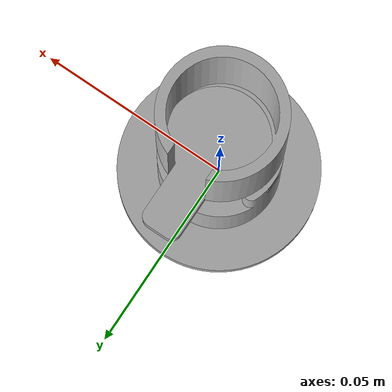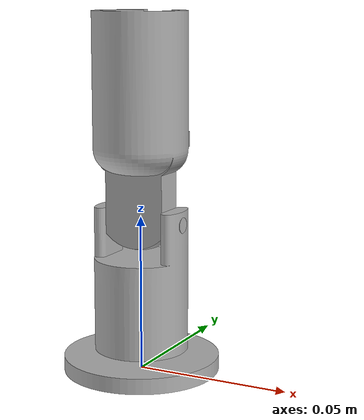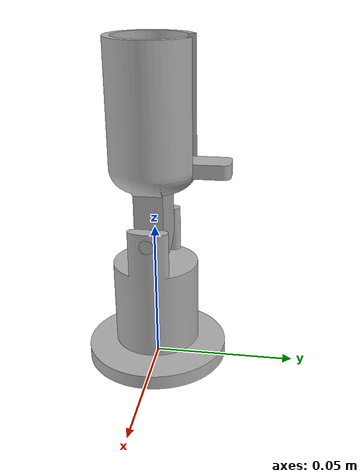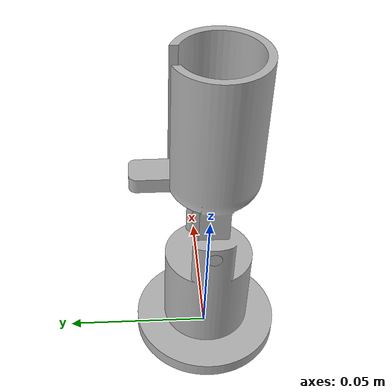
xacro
<?xml version="1.0" ?>
<robot name="final_assembly_backup" xmlns:xacro="http://www.ros.org/wiki/xacro">

<xacro:include filename="$(find final_assembly_backup_description)/urdf/materials.xacro" />
<xacro:include filename="$(find final_assembly_backup_description)/urdf/final_assembly_backup.trans" />
<xacro:include filename="$(find final_assembly_backup_description)/urdf/final_assembly_backup.gazebo" />
<link name="dummy"></link>
<link name="base_link">
  <inertial>
    <origin xyz="-2.075045481070518e-15 -7.180088169794181e-18 0.0025357142857142874" rpy="0 0 0"/>
    <mass value="1.07768373234164162"/>
    <inertia ixx="0" iyy="0" izz="0" ixy="-0.0" iyz="-0.0" ixz="0.0"/>
  </inertial>
  <visual>
    <origin xyz="0 0 0" rpy="0 0 0"/>
    <geometry>
      <mesh filename="package://final_assembly_backup_description/meshes/base_link.stl" scale="0.001 0.001 0.001"/>
    </geometry>
    <material name="silver"/>
  </visual>
  <collision>
    <origin xyz="0 0 0" rpy="0 0 0"/>
    <geometry>
      <mesh filename="package://final_assembly_backup_description/meshes/base_link.stl" scale="0.001 0.001 0.001"/>
    </geometry>
  </collision>
</link>

<link name="link_1_1">
  <inertial>
    <origin xyz="-1.2147925997531403e-07 -5.320834928309803e-08 0.016745112993794938" rpy="0 0 0"/>
    <mass value="1.17935029502345723"/>
    <inertia ixx="2.9e-05" iyy="3e-05" izz="2.1e-05" ixy="-0.0" iyz="0.0" ixz="0.0"/>
  </inertial>
  <visual>
    <origin xyz="-0.0 -0.0 -0.007" rpy="0 0 0"/>
    <geometry>
      <mesh filename="package://final_assembly_backup_description/meshes/link_1_1.stl" scale="0.001 0.001 0.001"/>
    </geometry>
    <material name="silver"/>
  </visual>
  <collision>
    <origin xyz="-0.0 -0.0 -0.007" rpy="0 0 0"/>
    <geometry>
      <mesh filename="package://final_assembly_backup_description/meshes/link_1_1.stl" scale="0.001 0.001 0.001"/>
    </geometry>
  </collision>
</link>

<link name="link_2_1">
  <inertial>
    <origin xyz="0.010000700001060087 -0.0009384679011191495 0.020424513745170826" rpy="0 0 0"/>
    <mass value="0.12678657059716397"/>
    <inertia ixx="6e-05" iyy="6.3e-05" izz="1.6e-05" ixy="-0.0" iyz="2e-06" ixz="0.0"/>
  </inertial>
  <visual>
    <origin xyz="0.01 -0.0 -0.055653" rpy="0 0 0"/>
    <geometry>
      <mesh filename="package://final_assembly_backup_description/meshes/link_2_1.stl" scale="0.001 0.001 0.001"/>
    </geometry>
    <material name="silver"/>
  </visual>
  <collision>
    <origin xyz="0.01 -0.0 -0.055653" rpy="0 0 0"/>
    <geometry>
      <mesh filename="package://final_assembly_backup_description/meshes/link_2_1.stl" scale="0.001 0.001 0.001"/>
    </geometry>
  </collision>
</link>

<link name="prismatic_slider_1">
  <inertial>
    <origin xyz="1.0700040768405487e-17 0.003762714426131724 0.0025003994585711536" rpy="0 0 0"/>
    <mass value="0.024201927964220705"/>
    <inertia ixx="2e-06" iyy="1e-06" izz="3e-06" ixy="-0.0" iyz="-0.0" ixz="-0.0"/>
  </inertial>
  <visual>
    <origin xyz="-0.0 -0.001554 -0.069653" rpy="0 0 0"/>
    <geometry>
      <mesh filename="package://final_assembly_backup_description/meshes/prismatic_slider_1.stl" scale="0.001 0.001 0.001"/>
    </geometry>
    <material name="silver"/>
  </visual>
  <collision>
    <origin xyz="-0.0 -0.001554 -0.069653" rpy="0 0 0"/>
    <geometry>
      <mesh filename="package://final_assembly_backup_description/meshes/prismatic_slider_1.stl" scale="0.001 0.001 0.001"/>
    </geometry>
  </collision>
</link>

<joint name="dummy_joint" type="fixed">
  <parent link="dummy"/>
  <child link="base_link"/>
</joint>

<joint name="pan" type="continuous">
  <origin xyz="0.0 0.0 0.007" rpy="0 0 0"/>
  <parent link="base_link"/>
  <child link="link_1_1"/>
  <axis xyz="0.0 0.0 1.0"/>
</joint>

<joint name="tilt" type="revolute">
  <origin xyz="-0.01 0.0 0.048653" rpy="0 0 0"/>
  <parent link="link_1_1"/>
  <child link="link_2_1"/>
  <axis xyz="1.0 0.0 0.0"/>
  <limit upper="1.570796" lower="-1.570796" effort="100" velocity="100"/>
</joint>

<joint name="slider" type="prismatic">
  <origin xyz="0.01 0.001554 0.014" rpy="0 0 0"/>
  <parent link="link_2_1"/>
  <child link="prismatic_slider_1"/>
  <axis xyz="0.0 0.0 1.0"/>
  <limit upper="0.04" lower="0.0" effort="100" velocity="100"/>
</joint>

</robot>

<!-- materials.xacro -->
<robot name="final_assembly_backup" xmlns:xacro="http://www.ros.org/wiki/xacro" >

<material name="silver">
  <color rgba="0.700 0.700 0.700 1.000"/>
</material>

</robot>

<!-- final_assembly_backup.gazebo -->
<robot name="final_assembly_backup" xmlns:xacro="http://www.ros.org/wiki/xacro" >

<xacro:property name="body_color" value="Gazebo/Silver" />

<gazebo>
  <plugin name="control" filename="libgazebo_ros_control.so"/>
</gazebo>
<gazebo reference="base_link">
  <material>${body_color}</material>
  <mu1>0.2</mu1>
  <mu2>0.2</mu2>
  <selfCollide>true</selfCollide>
  <gravity>true</gravity>
</gazebo>

<gazebo reference="link_1_1">
  <material>${body_color}</material>
  <mu1>0.2</mu1>
  <mu2>0.2</mu2>
  <selfCollide>true</selfCollide>
</gazebo>

<gazebo reference="link_2_1">
  <material>${body_color}</material>
  <mu1>2</mu1>
  <mu2>2</mu2>
  <selfCollide>true</selfCollide>
</gazebo>

<gazebo reference="prismatic_slider_1">
  <material>${body_color}</material>
  <mu1>0.2</mu1>
  <mu2>0.2</mu2>
  <selfCollide>true</selfCollide>
</gazebo>

</robot>
